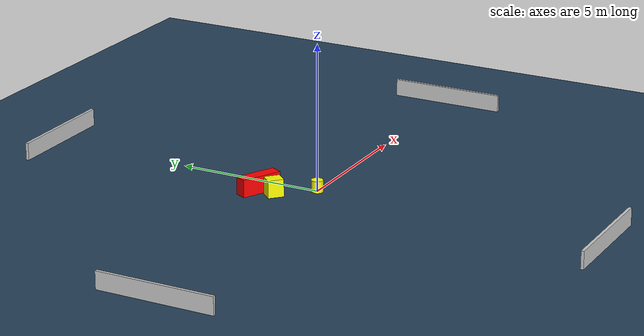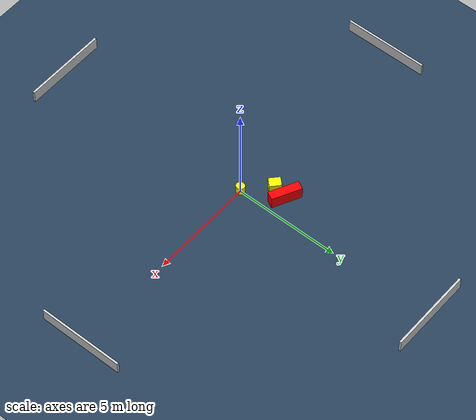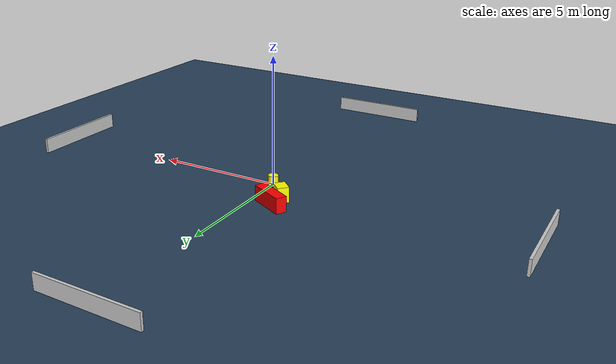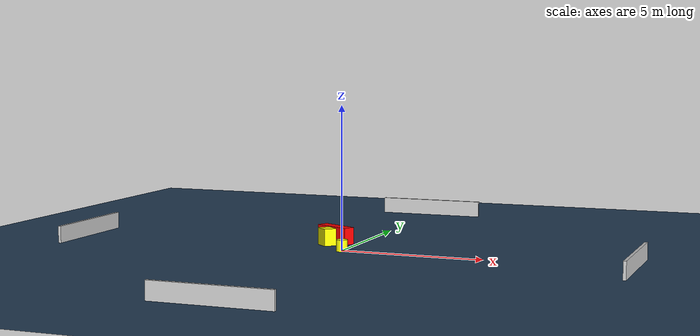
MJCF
<?xml version="1.0" ?>
<mujoco model="generated_environment">
  <option timestep="0.01" integrator="RK4" cone="elliptic"/>
  <default>
    <geom density="1"/>
  </default>
  <asset>
    <texture builtin="gradient" height="3072" name="skybox" rgb1="0.3 0.5 0.7" rgb2="0 0 0" type="skybox" width="512"/>
    <texture builtin="checker" height="300" name="groundplane" rgb1="0.2 0.3 0.4" rgb2="0.1 0.2 0.3" type="2d" width="300"/>
    <material name="groundplane" reflectance="0.2" texrepeat="5 5" texture="groundplane"/>
  </asset>
  <worldbody>
    <light dir="0 0 -1" directional="true" pos="0 0 1.5"/>
    <geom condim="3" friction="0.5 0.005 0.001" material="groundplane" name="floor" pos="0 0 0" size="0 0 0.05" type="plane"/>
    <body name="walls">
      <geom name="wall_1" condim="4" pos="-10.0 0.0 0.3" rgba="0.800000011920929 0.800000011920929 0.800000011920929 1.0" size="0.05 2.0 0.3" type="box"/>
      <geom name="wall_2" condim="4" pos="10.0 0.0 0.3" rgba="0.800000011920929 0.800000011920929 0.800000011920929 1.0" size="0.05 2.0 0.3" type="box"/>
      <geom name="wall_3" condim="4" pos="0.0 -10.0 0.3" rgba="0.800000011920929 0.800000011920929 0.800000011920929 1.0" size="2.0 0.05 0.3" type="box"/>
      <geom name="wall_4" condim="4" pos="0.0 10.0 0.3" rgba="0.800000011920929 0.800000011920929 0.800000011920929 1.0" size="2.0 0.05 0.3" type="box"/>
    </body>
    <body name="robot">
      <joint name="joint_x" type="slide" pos="0 0 0" axis="1 0 0"/>
      <joint name="joint_y" type="slide" pos="0 0 0" axis="0 1 0"/>
      <geom name="robot" type="cylinder" pos="0.0 0.0 0.2" size="0.2 0.2 0.0" mass="5.0" friction="1.0 0.005 0.0001" condim="4" rgba="1.0 1.0 0.0 1.0"/>
    </body>
    <body name="obstacle_1_movable">
      <geom name="obstacle_1_movable" condim="4" pos="-0.9754072768136037 1.074028310968757 0.3" euler="0 0 137.28951163098708" friction="0.0 0.005 0.001" rgba="1.0 1.0 0.0 1.0" size="0.26994449440371376 0.2229988515302055 0.3" type="box" mass="0.1"/>
      <joint type="free"/>
    </body>
    <body name="obstacle_2_static">
      <geom name="obstacle_2_static" condim="4" pos="-0.895425528128931 1.6888728048917374 0.3" euler="0 0 243.3150458778564" friction="0.0 0.005 0.001" rgba="1.0 0.0 0.0 1.0" size="0.21016880671297444 0.7102977983668204 0.3" type="box"/>
    </body>
  </worldbody>
  <actuator>
    <motor name="actuator_x" joint="joint_x" gear="1" ctrlrange="-1 1"/>
    <motor name="actuator_y" joint="joint_y" gear="1" ctrlrange="-1 1"/>
  </actuator>
</mujoco>
